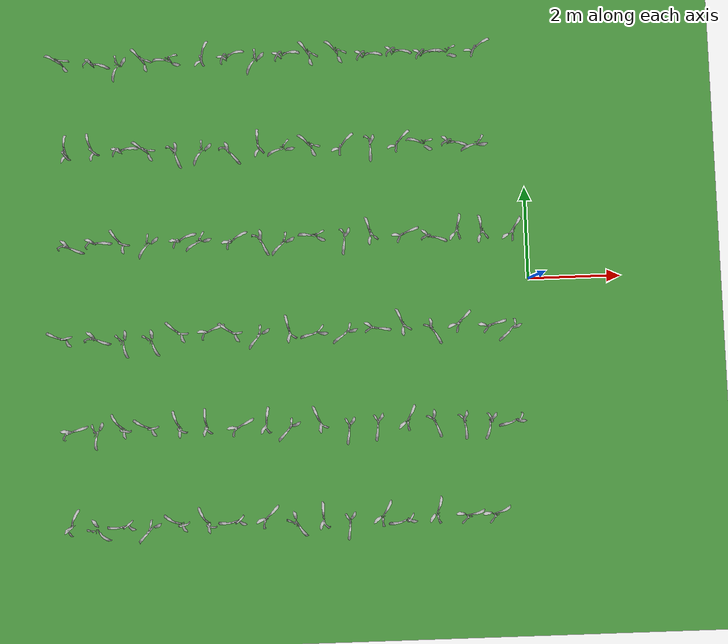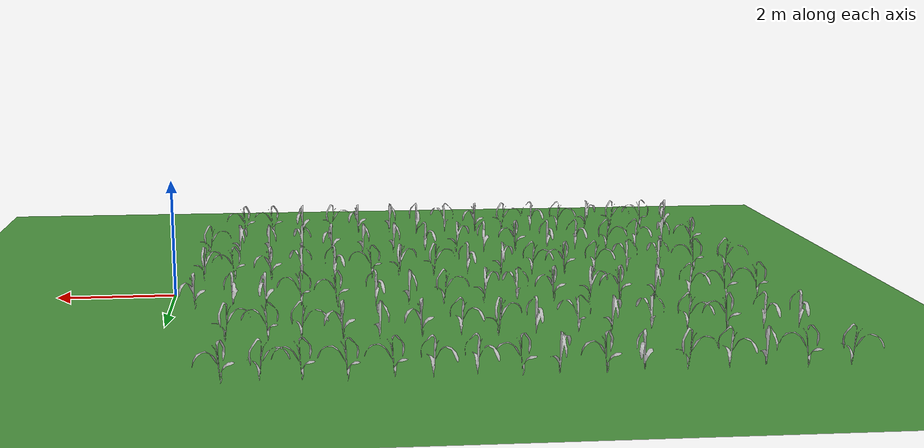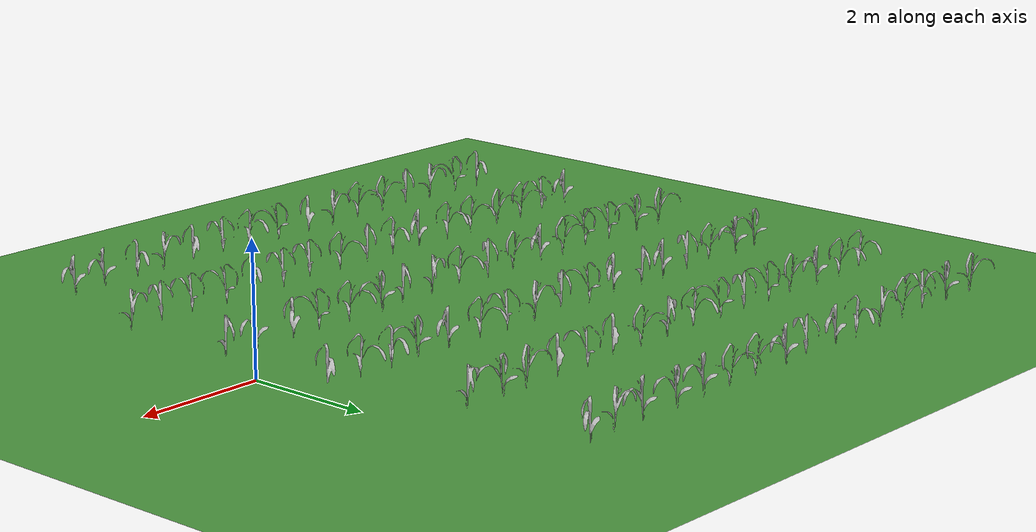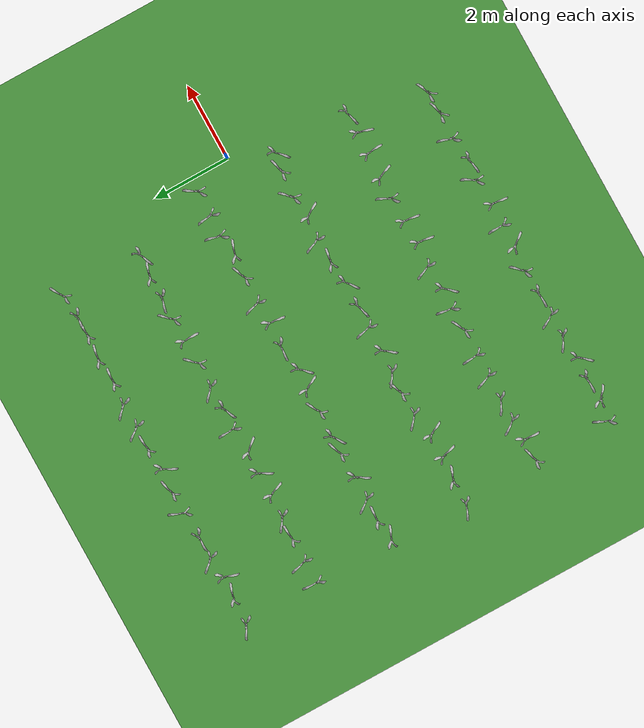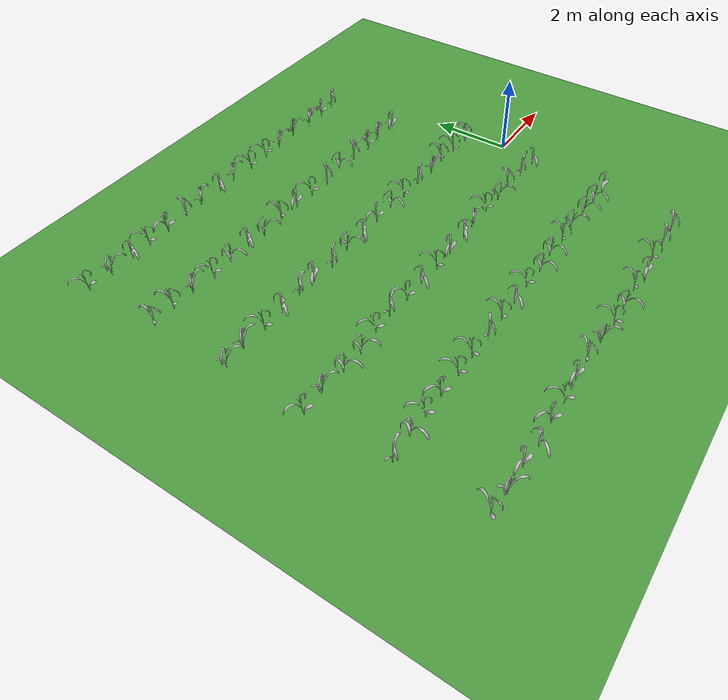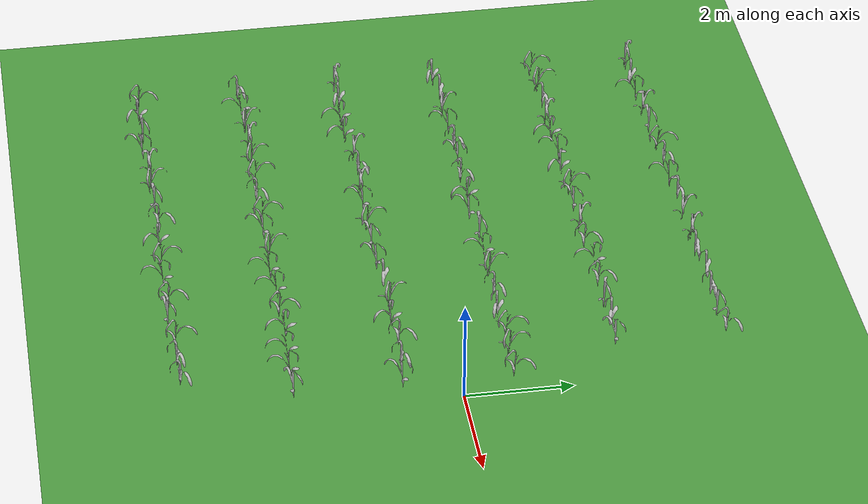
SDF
<sdf version="1.5">
 <world name="custom_maize_farm">
  <include><uri>model://sun</uri></include>
  <model name="ground_plane">
   <static>true</static>
   <link name="link">
    <collision name="collision">
     <geometry><plane><normal>0 0 1</normal><size>100 100</size></plane></geometry>
     <surface><friction><ode><mu>100</mu><mu2>50</mu2></ode></friction></surface>
    </collision>
    <visual name="visual">
     <cast_shadows>false</cast_shadows>
     <geometry><plane><normal>0 0 1</normal><size>100 100</size></plane></geometry>
     <material>
      <script><uri>file://media/materials/scripts/gazebo.material</uri><name>Gazebo/Grass</name></script>
     </material>
    </visual>
   </link>
  </model>
  <include>
   <uri>model://maize_01</uri>
   <name>plant_0_0</name>
   <pose>-9.950015684634327 -4.985220740807894 0 0 0 1.9427551987426956</pose>
   <static>true</static>
  </include>
  <include>
   <uri>model://maize_01</uri>
   <name>plant_0_1</name>
   <pose>-9.431641285239666 -5.015873147294752 0 0 0 0.12317471598730326</pose>
   <static>true</static>
  </include>
  <include>
   <uri>model://maize_01</uri>
   <name>plant_0_2</name>
   <pose>-8.775234666194738 -4.99146210829831 0 0 0 3.9458790620117963</pose>
   <static>true</static>
  </include>
  <include>
   <uri>model://maize_01</uri>
   <name>plant_0_3</name>
   <pose>-8.239533829748218 -5.041412080735454 0 0 0 4.770084380476563</pose>
   <static>true</static>
  </include>
  <include>
   <uri>model://maize_01</uri>
   <name>plant_0_4</name>
   <pose>-7.620097730129619 -4.988288051378367 0 0 0 3.405243667717047</pose>
   <static>true</static>
  </include>
  <include>
   <uri>model://maize_01</uri>
   <name>plant_0_5</name>
   <pose>-7.039800835656404 -5.001277958559709 0 0 0 2.8926313247705324</pose>
   <static>true</static>
  </include>
  <include>
   <uri>model://maize_01</uri>
   <name>plant_0_6</name>
   <pose>-6.423623272379806 -4.9626402321982965 0 0 0 3.975982282345477</pose>
   <static>true</static>
  </include>
  <include>
   <uri>model://maize_01</uri>
   <name>plant_0_7</name>
   <pose>-5.847219027045727 -4.953034517010455 0 0 0 1.5854063479168143</pose>
   <static>true</static>
  </include>
  <include>
   <uri>model://maize_01</uri>
   <name>plant_0_8</name>
   <pose>-5.208080231089244 -4.989972346221817 0 0 0 6.167456968573333</pose>
   <static>true</static>
  </include>
  <include>
   <uri>model://maize_01</uri>
   <name>plant_0_9</name>
   <pose>-4.6030653152530885 -5.024272154123194 0 0 0 2.405246684877826</pose>
   <static>true</static>
  </include>
  <include>
   <uri>model://maize_01</uri>
   <name>plant_0_10</name>
   <pose>-4.0420103670605645 -5.019522606767593 0 0 0 5.3854082880492165</pose>
   <static>true</static>
  </include>
  <include>
   <uri>model://maize_01</uri>
   <name>plant_0_11</name>
   <pose>-3.3754353701811626 -4.992435762995073 0 0 0 1.8357666280684397</pose>
   <static>true</static>
  </include>
  <include>
   <uri>model://maize_01</uri>
   <name>plant_0_12</name>
   <pose>-2.821124710534944 -5.044305287035468 0 0 0 4.104097858945078</pose>
   <static>true</static>
  </include>
  <include>
   <uri>model://maize_01</uri>
   <name>plant_0_13</name>
   <pose>-2.2165230883370945 -4.975030167990959 0 0 0 2.080553257161189</pose>
   <static>true</static>
  </include>
  <include>
   <uri>model://maize_01</uri>
   <name>plant_0_14</name>
   <pose>-1.5942156243918648 -5.002708506085093 0 0 0 1.0660704147808664</pose>
   <static>true</static>
  </include>
  <include>
   <uri>model://maize_01</uri>
   <name>plant_0_15</name>
   <pose>-1.0219309060435222 -4.998081330885242 0 0 0 1.2160557146972524</pose>
   <static>true</static>
  </include>
  <include>
   <uri>model://maize_01</uri>
   <name>plant_1_0</name>
   <pose>-9.962394933358189 -2.992780683829105 0 0 0 1.0794925421704704</pose>
   <static>true</static>
  </include>
  <include>
   <uri>model://maize_01</uri>
   <name>plant_1_1</name>
   <pose>-9.354930483927067 -2.9656536624921004 0 0 0 5.447783129123852</pose>
   <static>true</static>
  </include>
  <include>
   <uri>model://maize_01</uri>
   <name>plant_1_2</name>
   <pose>-8.810125140475678 -2.959440088026276 0 0 0 2.9931862585441</pose>
   <static>true</static>
  </include>
  <include>
   <uri>model://maize_01</uri>
   <name>plant_1_3</name>
   <pose>-8.229158304130367 -2.956928275919448 0 0 0 3.427516553612632</pose>
   <static>true</static>
  </include>
  <include>
   <uri>model://maize_01</uri>
   <name>plant_1_4</name>
   <pose>-7.600489156452854 -2.978776607320198 0 0 0 2.7301158146054285</pose>
   <static>true</static>
  </include>
  <include>
   <uri>model://maize_01</uri>
   <name>plant_1_5</name>
   <pose>-7.0313171345660805 -2.974412303251181 0 0 0 2.4522399170494333</pose>
   <static>true</static>
  </include>
  <include>
   <uri>model://maize_01</uri>
   <name>plant_1_6</name>
   <pose>-6.403142284252997 -3.009891588783598 0 0 0 1.2739413454634707</pose>
   <static>true</static>
  </include>
  <include>
   <uri>model://maize_01</uri>
   <name>plant_1_7</name>
   <pose>-5.770039343610996 -2.98175788799993 0 0 0 2.2264833216283675</pose>
   <static>true</static>
  </include>
  <include>
   <uri>model://maize_01</uri>
   <name>plant_1_8</name>
   <pose>-5.228684424350039 -2.9999335323577845 0 0 0 4.764730829718928</pose>
   <static>true</static>
  </include>
  <include>
   <uri>model://maize_01</uri>
   <name>plant_1_9</name>
   <pose>-4.59909779567817 -2.974048902856711 0 0 0 2.7772742567096262</pose>
   <static>true</static>
  </include>
  <include>
   <uri>model://maize_01</uri>
   <name>plant_1_10</name>
   <pose>-3.9908804818532846 -3.021301700737608 0 0 0 5.3645975694897094</pose>
   <static>true</static>
  </include>
  <include>
   <uri>model://maize_01</uri>
   <name>plant_1_11</name>
   <pose>-3.3832323622833664 -2.965664781739689 0 0 0 5.377602751346872</pose>
   <static>true</static>
  </include>
  <include>
   <uri>model://maize_01</uri>
   <name>plant_1_12</name>
   <pose>-2.77640946251609 -3.002566039755413 0 0 0 1.9082667288644164</pose>
   <static>true</static>
  </include>
  <include>
   <uri>model://maize_01</uri>
   <name>plant_1_13</name>
   <pose>-2.199253978936584 -2.9540616297711764 0 0 0 5.880894921022407</pose>
   <static>true</static>
  </include>
  <include>
   <uri>model://maize_01</uri>
   <name>plant_1_14</name>
   <pose>-1.5524326863403122 -2.989732317684061 0 0 0 5.583798550530543</pose>
   <static>true</static>
  </include>
  <include>
   <uri>model://maize_01</uri>
   <name>plant_1_15</name>
   <pose>-0.9855118390563306 -3.014346428402722 0 0 0 5.217528972781081</pose>
   <static>true</static>
  </include>
  <include>
   <uri>model://maize_01</uri>
   <name>plant_1_16</name>
   <pose>-0.41493745091150125 -3.0203868425066647 0 0 0 4.205324832068393</pose>
   <static>true</static>
  </include>
  <include>
   <uri>model://maize_01</uri>
   <name>plant_2_0</name>
   <pose>-10.033013307366879 -1.0107958466880789 0 0 0 3.5316789260757986</pose>
   <static>true</static>
  </include>
  <include>
   <uri>model://maize_01</uri>
   <name>plant_2_1</name>
   <pose>-9.43184719091564 -0.997766063077736 0 0 0 0.4469362156262433</pose>
   <static>true</static>
  </include>
  <include>
   <uri>model://maize_01</uri>
   <name>plant_2_2</name>
   <pose>-8.784312797040794 -1.0437982099058136 0 0 0 5.778526323864953</pose>
   <static>true</static>
  </include>
  <include>
   <uri>model://maize_01</uri>
   <name>plant_2_3</name>
   <pose>-8.191585967824846 -1.0483468975251435 0 0 0 5.964876988055943</pose>
   <static>true</static>
  </include>
  <include>
   <uri>model://maize_01</uri>
   <name>plant_2_4</name>
   <pose>-7.550314843045365 -0.9653832985440374 0 0 0 3.2349161028600757</pose>
   <static>true</static>
  </include>
  <include>
   <uri>model://maize_01</uri>
   <name>plant_2_5</name>
   <pose>-6.9907249454228815 -0.950691635259137 0 0 0 1.1621284328655697</pose>
   <static>true</static>
  </include>
  <include>
   <uri>model://maize_01</uri>
   <name>plant_2_6</name>
   <pose>-6.397445920269824 -0.996290364567937 0 0 0 3.3364077863636283</pose>
   <static>true</static>
  </include>
  <include>
   <uri>model://maize_01</uri>
   <name>plant_2_7</name>
   <pose>-5.826817061336945 -1.0038778415324445 0 0 0 4.842298784163347</pose>
   <static>true</static>
  </include>
  <include>
   <uri>model://maize_01</uri>
   <name>plant_2_8</name>
   <pose>-5.2013906976604805 -1.0329962261085281 0 0 0 2.5964632337256304</pose>
   <static>true</static>
  </include>
  <include>
   <uri>model://maize_01</uri>
   <name>plant_2_9</name>
   <pose>-4.587252292423795 -1.0196848481419358 0 0 0 4.208502775781188</pose>
   <static>true</static>
  </include>
  <include>
   <uri>model://maize_01</uri>
   <name>plant_2_10</name>
   <pose>-3.9522960135668206 -1.0166398759697741 0 0 0 4.573591010602001</pose>
   <static>true</static>
  </include>
  <include>
   <uri>model://maize_01</uri>
   <name>plant_2_11</name>
   <pose>-3.444513221453109 -0.9612281942887849 0 0 0 0.6454835632696261</pose>
   <static>true</static>
  </include>
  <include>
   <uri>model://maize_01</uri>
   <name>plant_2_12</name>
   <pose>-2.762718828543447 -0.9560353835580316 0 0 0 2.776328881147767</pose>
   <static>true</static>
  </include>
  <include>
   <uri>model://maize_01</uri>
   <name>plant_2_13</name>
   <pose>-2.183723834361364 -0.9990017904531587 0 0 0 6.03959594978293</pose>
   <static>true</static>
  </include>
  <include>
   <uri>model://maize_01</uri>
   <name>plant_2_14</name>
   <pose>-1.6234820532190506 -0.9501946205918481 0 0 0 1.5681449194847912</pose>
   <static>true</static>
  </include>
  <include>
   <uri>model://maize_01</uri>
   <name>plant_2_15</name>
   <pose>-0.9655162515471103 -1.0019455635867065 0 0 0 1.059348516502266</pose>
   <static>true</static>
  </include>
  <include>
   <uri>model://maize_01</uri>
   <name>plant_2_16</name>
   <pose>-0.4271429484950232 -1.0460586685366833 0 0 0 4.674497067087042</pose>
   <static>true</static>
  </include>
  <include>
   <uri>model://maize_01</uri>
   <name>plant_3_0</name>
   <pose>-9.962999057519504 0.9858492053172173 0 0 0 0.4024582241444982</pose>
   <static>true</static>
  </include>
  <include>
   <uri>model://maize_01</uri>
   <name>plant_3_1</name>
   <pose>-9.389204127492835 1.0465273575361689 0 0 0 0.736181476635459</pose>
   <static>true</static>
  </include>
  <include>
   <uri>model://maize_01</uri>
   <name>plant_3_2</name>
   <pose>-8.771536128549252 0.9994176567104502 0 0 0 3.0079949469576435</pose>
   <static>true</static>
  </include>
  <include>
   <uri>model://maize_01</uri>
   <name>plant_3_3</name>
   <pose>-8.166510446050614 1.0291364588770222 0 0 0 4.927296897019695</pose>
   <static>true</static>
  </include>
  <include>
   <uri>model://maize_01</uri>
   <name>plant_3_4</name>
   <pose>-7.552991487223948 1.0333522446259433 0 0 0 1.1484046732851376</pose>
   <static>true</static>
  </include>
  <include>
   <uri>model://maize_01</uri>
   <name>plant_3_5</name>
   <pose>-7.040998158824224 1.0418195672995048 0 0 0 4.523970016722954</pose>
   <static>true</static>
  </include>
  <include>
   <uri>model://maize_01</uri>
   <name>plant_3_6</name>
   <pose>-6.427423733781878 0.9815783975564419 0 0 0 1.2975224102516822</pose>
   <static>true</static>
  </include>
  <include>
   <uri>model://maize_01</uri>
   <name>plant_3_7</name>
   <pose>-5.796829238896641 1.032289842608058 0 0 0 5.973813824680123</pose>
   <static>true</static>
  </include>
  <include>
   <uri>model://maize_01</uri>
   <name>plant_3_8</name>
   <pose>-5.243681481289475 0.9665396637885302 0 0 0 4.728049204430583</pose>
   <static>true</static>
  </include>
  <include>
   <uri>model://maize_01</uri>
   <name>plant_3_9</name>
   <pose>-4.553560828430205 1.0481543872571186 0 0 0 3.8530851183679378</pose>
   <static>true</static>
  </include>
  <include>
   <uri>model://maize_01</uri>
   <name>plant_3_10</name>
   <pose>-3.9663448823464016 1.0349474723960004 0 0 0 5.39879775130361</pose>
   <static>true</static>
  </include>
  <include>
   <uri>model://maize_01</uri>
   <name>plant_3_11</name>
   <pose>-3.4000531371333715 1.020216881785807 0 0 0 2.64658479429255</pose>
   <static>true</static>
  </include>
  <include>
   <uri>model://maize_01</uri>
   <name>plant_3_12</name>
   <pose>-2.754899664034177 1.0043057902647798 0 0 0 1.1656466605584754</pose>
   <static>true</static>
  </include>
  <include>
   <uri>model://maize_01</uri>
   <name>plant_3_13</name>
   <pose>-2.1601296436298663 0.9671615883128915 0 0 0 0.4762545051524195</pose>
   <static>true</static>
  </include>
  <include>
   <uri>model://maize_01</uri>
   <name>plant_3_14</name>
   <pose>-1.5749316729797909 1.0271786327134822 0 0 0 2.1371977778392157</pose>
   <static>true</static>
  </include>
  <include>
   <uri>model://maize_01</uri>
   <name>plant_3_15</name>
   <pose>-1.0216181712583354 0.9814300830403283 0 0 0 2.509181841963795</pose>
   <static>true</static>
  </include>
  <include>
   <uri>model://maize_01</uri>
   <name>plant_3_16</name>
   <pose>-0.3987807773414177 0.9712422345967311 0 0 0 1.7950267367538297</pose>
   <static>true</static>
  </include>
  <include>
   <uri>model://maize_01</uri>
   <name>plant_4_0</name>
   <pose>-9.955267397230324 3.002504122398599 0 0 0 2.3129174652405493</pose>
   <static>true</static>
  </include>
  <include>
   <uri>model://maize_01</uri>
   <name>plant_4_1</name>
   <pose>-9.367917505213441 3.0441842959228333 0 0 0 2.6209619191630535</pose>
   <static>true</static>
  </include>
  <include>
   <uri>model://maize_01</uri>
   <name>plant_4_2</name>
   <pose>-8.78169756493929 3.035442378964982 0 0 0 0.8874605220927779</pose>
   <static>true</static>
  </include>
  <include>
   <uri>model://maize_01</uri>
   <name>plant_4_3</name>
   <pose>-8.172922307387985 2.9836533394135967 0 0 0 3.3117663645779456</pose>
   <static>true</static>
  </include>
  <include>
   <uri>model://maize_01</uri>
   <name>plant_4_4</name>
   <pose>-7.598472683195693 3.0005704829007236 0 0 0 5.872956723288833</pose>
   <static>true</static>
  </include>
  <include>
   <uri>model://maize_01</uri>
   <name>plant_4_5</name>
   <pose>-6.959887233375563 3.0298105222417475 0 0 0 4.980917855409195</pose>
   <static>true</static>
  </include>
  <include>
   <uri>model://maize_01</uri>
   <name>plant_4_6</name>
   <pose>-6.446527004669539 2.9760874468464475 0 0 0 6.231910854086713</pose>
   <static>true</static>
  </include>
  <include>
   <uri>model://maize_01</uri>
   <name>plant_4_7</name>
   <pose>-5.768480148739019 3.006631343154569 0 0 0 2.4101924392193896</pose>
   <static>true</static>
  </include>
  <include>
   <uri>model://maize_01</uri>
   <name>plant_4_8</name>
   <pose>-5.19289446712039 2.9925846907670435 0 0 0 4.347854733809118</pose>
   <static>true</static>
  </include>
  <include>
   <uri>model://maize_01</uri>
   <name>plant_4_9</name>
   <pose>-4.610785814701076 2.980427824502452 0 0 0 3.202017875738133</pose>
   <static>true</static>
  </include>
  <include>
   <uri>model://maize_01</uri>
   <name>plant_4_10</name>
   <pose>-4.004065361172913 2.955693218486129 0 0 0 1.5876064820555393</pose>
   <static>true</static>
  </include>
  <include>
   <uri>model://maize_01</uri>
   <name>plant_4_11</name>
   <pose>-3.3567173003582536 3.04364941378803 0 0 0 5.515743240897998</pose>
   <static>true</static>
  </include>
  <include>
   <uri>model://maize_01</uri>
   <name>plant_4_12</name>
   <pose>-2.789085480854176 2.9828376384554574 0 0 0 1.5870832336065173</pose>
   <static>true</static>
  </include>
  <include>
   <uri>model://maize_01</uri>
   <name>plant_4_13</name>
   <pose>-2.161104414388719 2.9757292516020972 0 0 0 3.679037745674253</pose>
   <static>true</static>
  </include>
  <include>
   <uri>model://maize_01</uri>
   <name>plant_4_14</name>
   <pose>-1.6461070599364729 3.0081142045779203 0 0 0 0.5109708263405858</pose>
   <static>true</static>
  </include>
  <include>
   <uri>model://maize_01</uri>
   <name>plant_4_15</name>
   <pose>-1.0024735950665846 2.960827968011586 0 0 0 4.32316811333554</pose>
   <static>true</static>
  </include>
  <include>
   <uri>model://maize_01</uri>
   <name>plant_5_0</name>
   <pose>-9.9967113674786 4.983874295393386 0 0 0 3.4442007242197588</pose>
   <static>true</static>
  </include>
  <include>
   <uri>model://maize_01</uri>
   <name>plant_5_1</name>
   <pose>-9.35592977384356 4.970404580742581 0 0 0 0.49895888118908066</pose>
   <static>true</static>
  </include>
  <include>
   <uri>model://maize_01</uri>
   <name>plant_5_2</name>
   <pose>-8.752319519603246 4.952671141808878 0 0 0 5.19206816784773</pose>
   <static>true</static>
  </include>
  <include>
   <uri>model://maize_01</uri>
   <name>plant_5_3</name>
   <pose>-8.20926917897679 4.9643157765728985 0 0 0 3.1007493610903025</pose>
   <static>true</static>
  </include>
  <include>
   <uri>model://maize_01</uri>
   <name>plant_5_4</name>
   <pose>-7.606888194578134 4.979128339084543 0 0 0 3.936477241260081</pose>
   <static>true</static>
  </include>
  <include>
   <uri>model://maize_01</uri>
   <name>plant_5_5</name>
   <pose>-6.962170983294431 5.00013164833945 0 0 0 1.9929525314766132</pose>
   <static>true</static>
  </include>
  <include>
   <uri>model://maize_01</uri>
   <name>plant_5_6</name>
   <pose>-6.4258559445753685 5.017811580348307 0 0 0 1.063809832353891</pose>
   <static>true</static>
  </include>
  <include>
   <uri>model://maize_01</uri>
   <name>plant_5_7</name>
   <pose>-5.765814952439401 4.990934255342268 0 0 0 4.997535975291644</pose>
   <static>true</static>
  </include>
  <include>
   <uri>model://maize_01</uri>
   <name>plant_5_8</name>
   <pose>-5.227837690152924 5.028086163162967 0 0 0 0.8759272662568401</pose>
   <static>true</static>
  </include>
  <include>
   <uri>model://maize_01</uri>
   <name>plant_5_9</name>
   <pose>-4.594299472219325 4.987709986616598 0 0 0 3.0153137001242976</pose>
   <static>true</static>
  </include>
  <include>
   <uri>model://maize_01</uri>
   <name>plant_5_10</name>
   <pose>-3.9757787092497523 5.018223086950142 0 0 0 3.183650070440606</pose>
   <static>true</static>
  </include>
  <include>
   <uri>model://maize_01</uri>
   <name>plant_5_11</name>
   <pose>-3.434903330031337 4.980180573422028 0 0 0 0.7299952615975636</pose>
   <static>true</static>
  </include>
  <include>
   <uri>model://maize_01</uri>
   <name>plant_5_12</name>
   <pose>-2.7853852192785094 5.039771878489328 0 0 0 0.6162196084878115</pose>
   <static>true</static>
  </include>
  <include>
   <uri>model://maize_01</uri>
   <name>plant_5_13</name>
   <pose>-2.153931500863953 4.977865877637727 0 0 0 0.8135458775725344</pose>
   <static>true</static>
  </include>
  <include>
   <uri>model://maize_01</uri>
   <name>plant_5_14</name>
   <pose>-1.5767672494109881 4.979948165210028 0 0 0 3.900441886214878</pose>
   <static>true</static>
  </include>
  <include>
   <uri>model://maize_01</uri>
   <name>plant_5_15</name>
   <pose>-1.0368077017257624 5.022915328530201 0 0 0 1.322362902189921</pose>
   <static>true</static>
  </include>
 </world>
</sdf>
